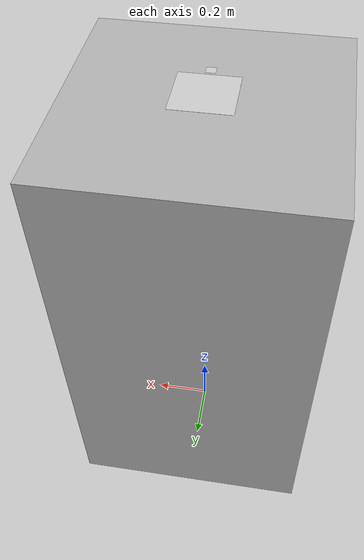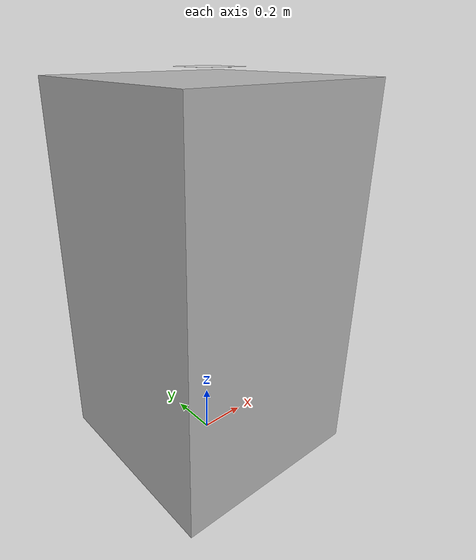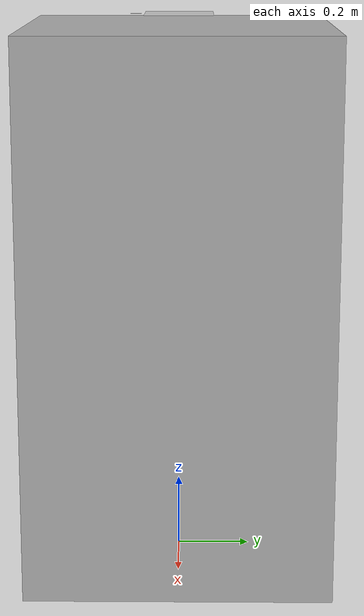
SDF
<?xml version='1.0'?>
<sdf version="1.9">
  <model name="aruco_landing_platform">
    <static>false</static>
    <link name="link">
      <collision name="collision">
        <pose>0 0 0.75 0 0 0</pose>
        <geometry>
          <box>
            <size>0.83 0.83 1.5</size> <!-- 長寬高分別為10m x 10m x 1.5m -->
          </box>
        </geometry>
      </collision>
      <visual name="rectangle">
        <pose>0 0 0.75 0 0 0</pose>
        <geometry>
          <box>
            <size>0.83 0.83 1.5</size>
          </box>
        </geometry>
        <material>
          <ambient>0.7 0.7 0.7 1</ambient>
          <diffuse>0.7 0.7 0.7 1</diffuse>
          <specular>0.1 0.1 0.1 1</specular>
        </material>
      </visual>
      <!-- 地板 -->

      <!-- 10cm x 10cm 的 Aruco 圖片 -->
      <visual name="aruco_10x10">
        <pose>0 -0.116 1.53 0 0 0</pose> <!-- 位置：距離地面高度 1.53m -->
        <geometry>
          <plane>
            <normal>0 0 1</normal>
            <size>0.03 0.03</size> <!-- 平面的尺寸為10cm x 10cm -->
          </plane>
        </geometry>
        <material>
          <ambient>0.8 0.8 0.8 1</ambient>
          <diffuse>0.8 0.8 0.8 1</diffuse>
          <specular>0.1 0.1 0.1 1</specular>
          <pbr>
            <metal>
              <albedo_map>materials/textures/6x6_ID_6.png</albedo_map>
              <roughness>0.6</roughness>
              <metalness>0</metalness>
            </metal>
          </pbr>
        </material>
      </visual>

      <!-- 20cm x 20cm 的 Aruco 圖片 -->
      <visual name="aruco_20x20">
        <pose>0 0 1.53 0 0 0</pose> <!-- 位置：距離中心右邊20cm，距離地面高度 1.53m -->
        <geometry>
          <plane>
            <normal>0 0 1</normal>
            <size>0.186 0.186</size> <!-- 平面的尺寸為20cm x 20cm -->
          </plane>
        </geometry>
        <material>
          <ambient>0.8 0.8 0.8 1</ambient>
          <diffuse>0.8 0.8 0.8 1</diffuse>
          <specular>0.1 0.1 0.1 1</specular>
          <pbr>
            <metal>
              <albedo_map>materials/textures/6x6_ID_0.png</albedo_map>
              <roughness>0.6</roughness>
              <metalness>0</metalness>
            </metal>
          </pbr>
        </material>
      </visual>
    </link>
  </model>
</sdf>
